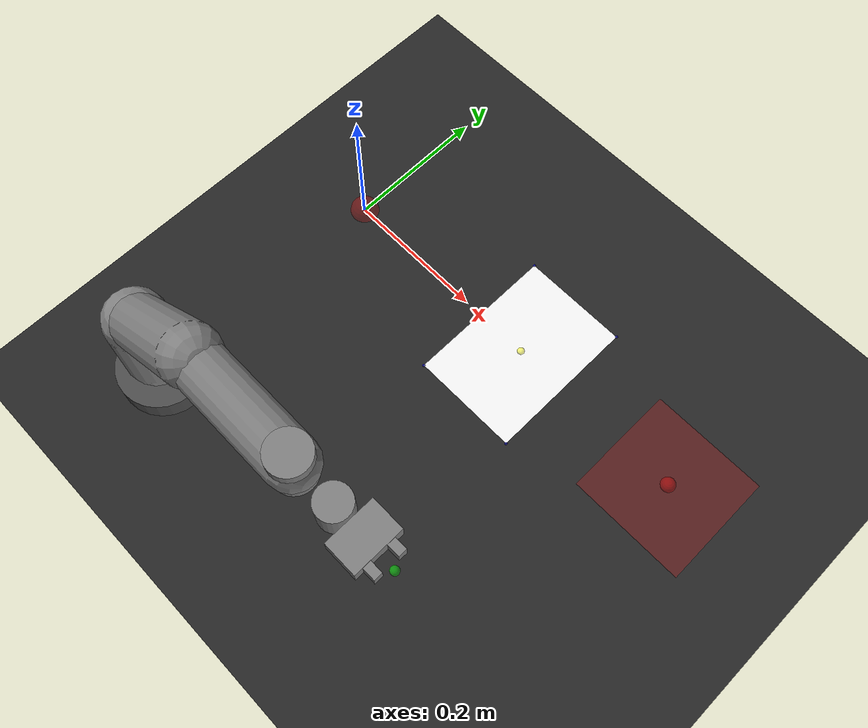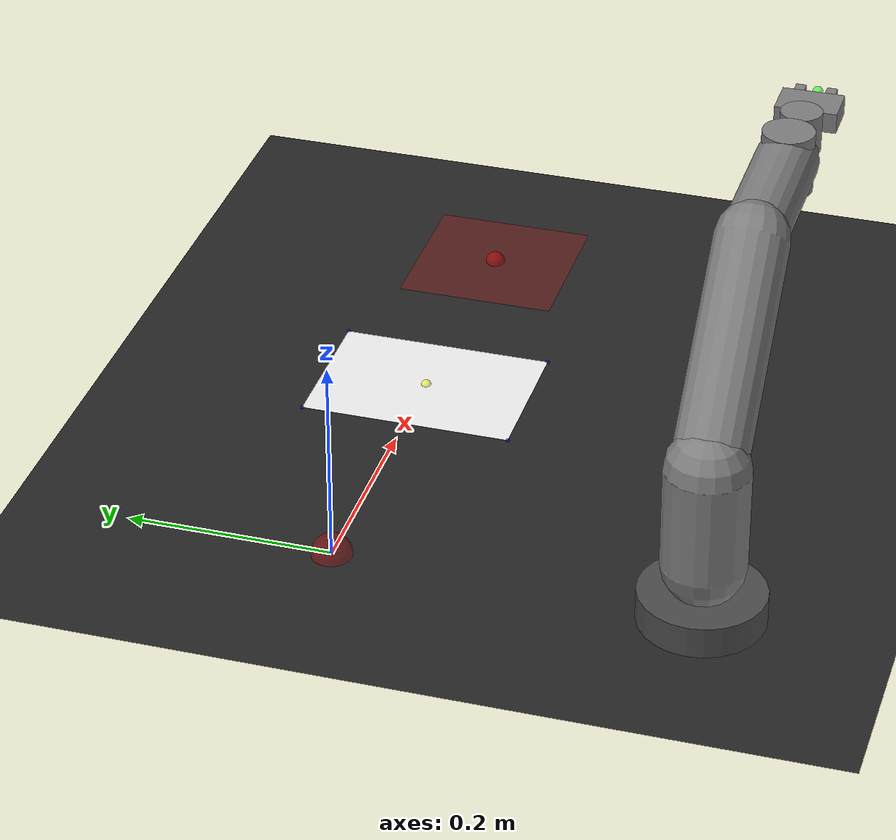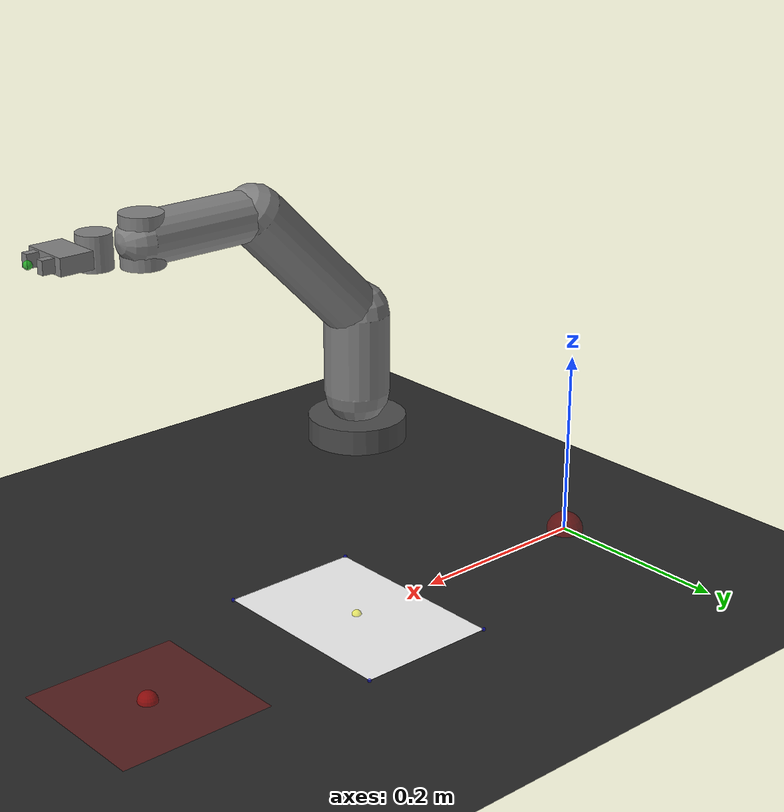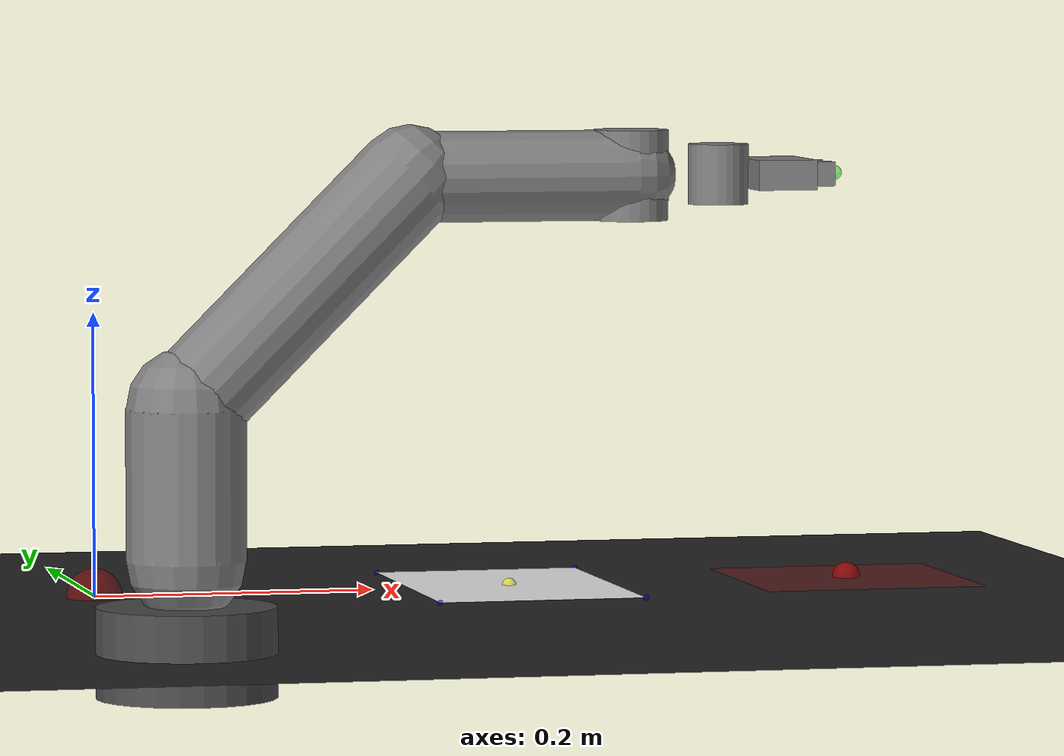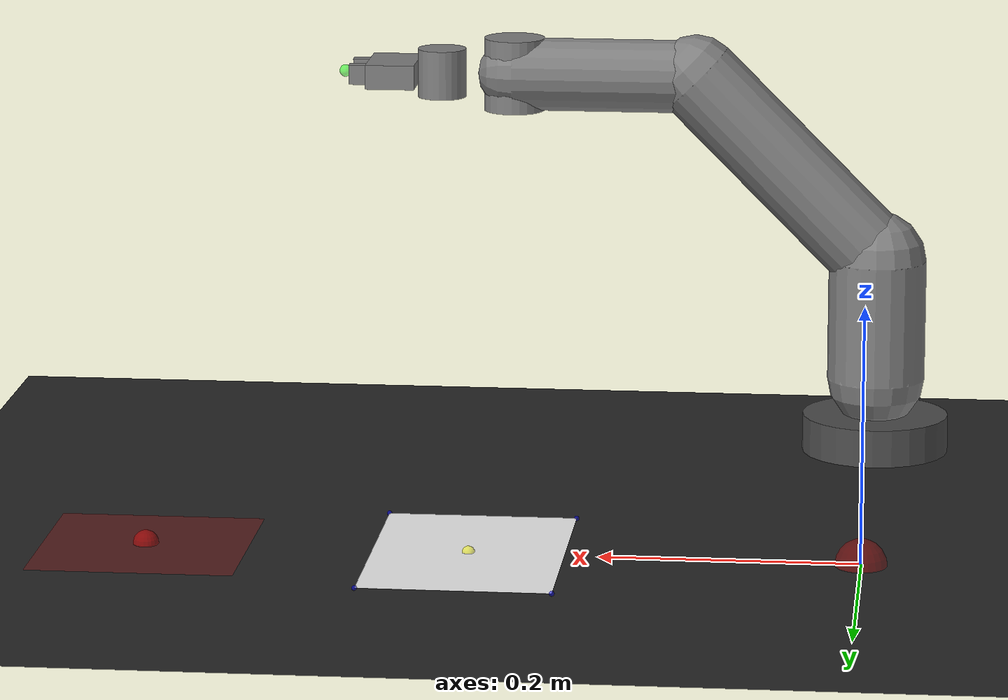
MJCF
<mujoco model="so101_paper_square">
  <compiler angle="degree" coordinate="local" inertiafromgeom="true"/>
  <option timestep="0.00277778" gravity="0 0 -9.81" cone="elliptic"/>
  <!-- timestep = 1/360 Hz for physics simulation -->

  <default>
    <geom condim="3" solref="0.005 1" solimp="0.9 0.95 0.001" friction="1 0.1 0.1"/>
    <joint damping="0.5"/>
    <position kp="200"/>
  </default>

  <asset>
    <texture name="grid" type="2d" builtin="checker" rgb1="0.1 0.1 0.1" rgb2="0.2 0.2 0.2" width="512" height="512"/>
    <material name="grid" texture="grid" texrepeat="8 8" reflectance="0.2"/>
    <material name="white" rgba="0.95 0.95 0.95 1"/>
    <material name="red_tape" rgba="0.8 0.1 0.1 0.3"/>
    <material name="robot_gray" rgba="0.5 0.5 0.5 1"/>
  </asset>

  <worldbody>
    <!-- Table/ground plane -->
    <body name="table" pos="0 0 0">
      <geom name="table_surface" type="plane" size="1 1 0.1" material="grid" friction="0.30 0.001 0.0001"/>
      <site name="table_center" pos="0 0 0.001" size="0.01" rgba="0 0 0 0"/>
    </body>

    <!-- SO-101 Robot (simplified 5 DOF + gripper) -->
    <body name="robot_base" pos="0 -0.35 0">
      <!-- Base -->
      <geom name="base_cylinder" type="cylinder" size="0.06 0.03" rgba="0.3 0.3 0.3 1"/>

      <!-- Joint 1: Shoulder Pan (yaw) -->
      <body name="link1" pos="0 0 0.06">
        <joint name="shoulder_pan" type="hinge" axis="0 0 1" range="-180 180" damping="1"/>
        <geom name="link1_geom" type="capsule" fromto="0 0 0 0 0 0.1" size="0.04" material="robot_gray"/>

        <!-- Joint 2: Shoulder Lift (pitch) -->
        <body name="link2" pos="0 0 0.1">
          <joint name="shoulder_lift" type="hinge" axis="0 1 0" range="-90 90" damping="1"/>
          <geom name="link2_geom" type="capsule" fromto="0 0 0 0.15 0 0.15" size="0.035" material="robot_gray"/>

          <!-- Joint 3: Elbow Flex (pitch) -->
          <body name="link3" pos="0.15 0 0.15">
            <joint name="elbow_flex" type="hinge" axis="0 1 0" range="-135 45" damping="0.5"/>
            <geom name="link3_geom" type="capsule" fromto="0 0 0 0.15 0 0" size="0.03" material="robot_gray"/>

            <!-- Joint 4: Wrist Flex (pitch) -->
            <body name="link4" pos="0.15 0 0">
              <joint name="wrist_flex" type="hinge" axis="0 1 0" range="-90 90" damping="0.2"/>
              <geom name="link4_geom" type="cylinder" size="0.025 0.03" material="robot_gray"/>

              <!-- Joint 5: Wrist Roll (roll) -->
              <body name="link5" pos="0.06 0 0">
                <joint name="wrist_roll" type="hinge" axis="1 0 0" range="-180 180" damping="0.1"/>
                <geom name="link5_geom" type="cylinder" size="0.02 0.02" material="robot_gray"/>

                <!-- Gripper -->
                <body name="gripper_base" pos="0.04 0 0">
                  <geom name="gripper_base_geom" type="box" size="0.02 0.03 0.01" material="robot_gray"/>

                  <!-- Left finger -->
                  <body name="gripper_left" pos="0.02 0.015 0">
                    <joint name="gripper_left_joint" type="slide" axis="0 1 0" range="0 0.025" damping="0.1"/>
                    <geom name="gripper_left_geom" type="box" size="0.015 0.005 0.008" material="robot_gray"/>
                  </body>

                  <!-- Right finger -->
                  <body name="gripper_right" pos="0.02 -0.015 0">
                    <joint name="gripper_right_joint" type="slide" axis="0 1 0" range="-0.025 0" damping="0.1"/>
                    <geom name="gripper_right_geom" type="box" size="0.015 0.005 0.008" material="robot_gray"/>
                  </body>

                  <!-- End-effector site -->
                  <site name="ee_site" pos="0.04 0 0" size="0.005" rgba="0 1 0 0.5"/>
                  <site name="wrist_site" pos="0 0 0" size="0.005" rgba="0 0 1 0.5"/>
                </body>
              </body>
            </body>
          </body>
        </body>
      </body>
    </body>

    <!-- Paper (A5 size: 148mm x 210mm, very thin) -->
    <body name="paper" pos="0.30 0.0 0.001">
      <joint name="paper_free" type="free"/>
      <geom name="paper_geom" type="box"
            size="0.074 0.105 0.0001"
            rgba="0.95 0.95 0.95 1"
            mass="0.005"
            friction="0.60 0.002 0.0001"
            condim="3"/>
      <!-- Corner sites for success detection -->
      <site name="paper_corner1" pos="0.074 0.105 0" size="0.002" rgba="0 0 1 0.5"/>
      <site name="paper_corner2" pos="0.074 -0.105 0" size="0.002" rgba="0 0 1 0.5"/>
      <site name="paper_corner3" pos="-0.074 0.105 0" size="0.002" rgba="0 0 1 0.5"/>
      <site name="paper_corner4" pos="-0.074 -0.105 0" size="0.002" rgba="0 0 1 0.5"/>
      <site name="paper_center" pos="0 0 0" size="0.005" rgba="1 1 0 0.5"/>
    </body>

    <!-- Red tape square target (16cm x 16cm) -->
    <body name="tape_square" pos="0.55 0.00 0.0005">
      <geom name="tape_geom" type="box"
            size="0.08 0.08 0.0002"
            material="red_tape"
            contype="0"
            conaffinity="0"/> <!-- Non-colliding visual marker -->
      <site name="tape_center" pos="0 0 0.001" size="0.01" rgba="1 0 0 0.5"/>
    </body>

    <!-- Optional: Small obstacles or visual markers -->
    <body name="markers" pos="0 0 0">
      <site name="workspace_origin" pos="0 0 0" size="0.02" rgba="1 0 0 0.3"/>
    </body>
  </worldbody>

  <actuator>
    <!-- Position control for robot joints -->
    <position name="shoulder_pan_act" joint="shoulder_pan" kp="100" forcerange="-20 20"/>
    <position name="shoulder_lift_act" joint="shoulder_lift" kp="150" forcerange="-30 30"/>
    <position name="elbow_flex_act" joint="elbow_flex" kp="100" forcerange="-20 20"/>
    <position name="wrist_flex_act" joint="wrist_flex" kp="50" forcerange="-10 10"/>
    <position name="wrist_roll_act" joint="wrist_roll" kp="30" forcerange="-5 5"/>

    <!-- Gripper control (coupled) -->
    <position name="gripper_act" joint="gripper_left_joint" kp="20" forcerange="-5 5"/>
    <position name="gripper_act_right" joint="gripper_right_joint" kp="20" forcerange="-5 5"/>
  </actuator>

  <sensor>
    <!-- Joint position sensors -->
    <jointpos name="shoulder_pan_pos" joint="shoulder_pan"/>
    <jointpos name="shoulder_lift_pos" joint="shoulder_lift"/>
    <jointpos name="elbow_flex_pos" joint="elbow_flex"/>
    <jointpos name="wrist_flex_pos" joint="wrist_flex"/>
    <jointpos name="wrist_roll_pos" joint="wrist_roll"/>
    <jointpos name="gripper_pos" joint="gripper_left_joint"/>

    <!-- Joint velocity sensors -->
    <jointvel name="shoulder_pan_vel" joint="shoulder_pan"/>
    <jointvel name="shoulder_lift_vel" joint="shoulder_lift"/>
    <jointvel name="elbow_flex_vel" joint="elbow_flex"/>
    <jointvel name="wrist_flex_vel" joint="wrist_flex"/>
    <jointvel name="wrist_roll_vel" joint="wrist_roll"/>
    <jointvel name="gripper_vel" joint="gripper_left_joint"/>

    <!-- End-effector position -->
    <framepos name="ee_pos" objtype="site" objname="ee_site"/>

    <!-- Paper pose -->
    <framepos name="paper_pos" objtype="body" objname="paper"/>
    <framequat name="paper_quat" objtype="body" objname="paper"/>
  </sensor>
</mujoco>
